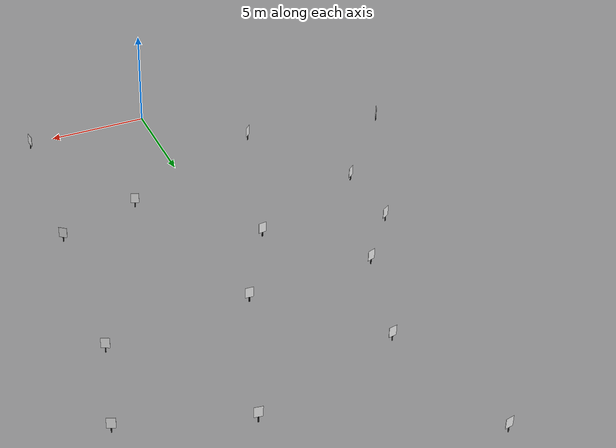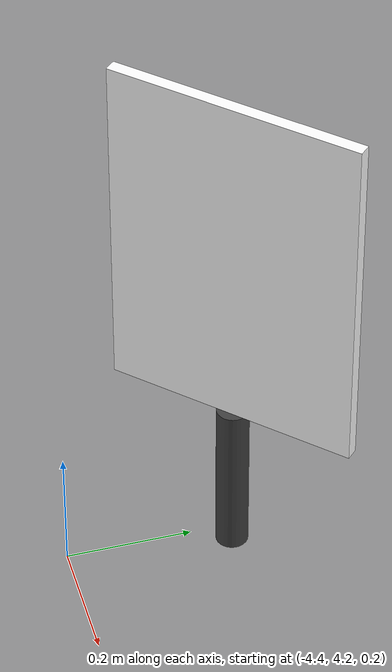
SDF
<sdf version="1.10">
 <world name="empty">
  <physics name="1ms" type="ignored">
   <max_step_size>0.001</max_step_size>
   <real_time_factor>1</real_time_factor>
   <dart>
    <collision_detector>bullet</collision_detector>
    <solver><solver_type>dantzig</solver_type></solver>
   </dart>
   <real_time_update_rate>1000</real_time_update_rate>
  </physics>
  <plugin name="gz::sim::systems::Physics" filename="gz-sim-physics-system"/>
  <plugin name="gz::sim::systems::UserCommands" filename="gz-sim-user-commands-system"/>
  <plugin name="gz::sim::systems::SceneBroadcaster" filename="gz-sim-scene-broadcaster-system"/>
  <plugin name="gz::sim::systems::Contact" filename="gz-sim-contact-system"/>
  <plugin name="gz::sim::systems::Imu" filename="gz-sim-imu-system"/>
  <plugin name="gz::sim::systems::Sensors" filename="gz-sim-sensors-system">
   <render_engine>ogre2</render_engine>
  </plugin>
  <gravity>0 0 -9.8000000000000007</gravity>
  <magnetic_field>5.5644999999999998e-06 2.2875799999999999e-05 -4.2388400000000002e-05</magnetic_field>
  <atmosphere type="adiabatic"/>
  <scene>
   <ambient>0.400000006 0.400000006 0.400000006 1</ambient>
   <background>0.699999988 0.699999988 0.699999988 1</background>
   <grid>false</grid>
   <origin_visual>false</origin_visual>
   <shadows>true</shadows>
  </scene>
  <frame name="S1"/>
  <frame name="S2"><pose>0.000 26.427 0.138 0 0 0</pose></frame>
  <frame name="S3"><pose>10.709 6.918 0.067 0 0 0</pose></frame>
  <frame name="S4"><pose>11.210 17.881 0.100 0 0 0</pose></frame>
  <frame name="S5"><pose>13.223 25.658 -0.035 0 0 0</pose></frame>
  <frame name="S6"><pose>-9.428 15.824 -0.302 0 0 0</pose></frame>
  <frame name="S7"><pose>-8.970 22.831 -0.180 0 0 0</pose></frame>
  <frame name="S8"><pose>-15.676 4.991 -0.280 0 0 0</pose></frame>
  <frame name="S9"><pose>7.160 -4.762 -0.095 0 0 0</pose></frame>
  <model name="landmark_L1">
   <static>true</static>
   <pose>3.183 8.012 0.414 0 0 -3.5198</pose>
   <link name="link">
    <collision name="post_collision">
     <pose>0 0 0.125 0 0 0</pose>
     <geometry><cylinder><radius>0.025</radius><length>0.250</length></cylinder></geometry>
    </collision>
    <visual name="post_visual">
     <pose>0 0 0.125 0 0 0</pose>
     <geometry><cylinder><radius>0.025</radius><length>0.250</length></cylinder></geometry>
     <material><ambient>0.25 0.25 0.25 1</ambient><diffuse>0.25 0.25 0.25 1</diffuse></material>
    </visual>
    <collision name="board_collision">
     <pose>0 0 0.525 0 0 0</pose>
     <geometry><box><size>0.400 0.02 0.550</size></box></geometry>
    </collision>
    <visual name="board_visual">
     <pose>0 0 0.525 0 0 0</pose>
     <geometry><box><size>0.400 0.02 0.550</size></box></geometry>
     <material>
      <ambient>1 1 1 1</ambient>
      <diffuse>1 1 1 1</diffuse>
      <pbr>
       <metal>
        <albedo_map>model://marsyard2026/landmark_L1.png</albedo_map>
        <roughness>0.9</roughness>
        <metalness>0</metalness>
       </metal>
      </pbr>
     </material>
    </visual>
   </link>
  </model>
  <model name="landmark_L2">
   <static>true</static>
   <pose>7.269 9.482 0.533 0 0 -3.7956</pose>
   <link name="link">
    <collision name="post_collision">
     <pose>0 0 0.125 0 0 0</pose>
     <geometry><cylinder><radius>0.025</radius><length>0.250</length></cylinder></geometry>
    </collision>
    <visual name="post_visual">
     <pose>0 0 0.125 0 0 0</pose>
     <geometry><cylinder><radius>0.025</radius><length>0.250</length></cylinder></geometry>
     <material><ambient>0.25 0.25 0.25 1</ambient><diffuse>0.25 0.25 0.25 1</diffuse></material>
    </visual>
    <collision name="board_collision">
     <pose>0 0 0.525 0 0 0</pose>
     <geometry><box><size>0.400 0.02 0.550</size></box></geometry>
    </collision>
    <visual name="board_visual">
     <pose>0 0 0.525 0 0 0</pose>
     <geometry><box><size>0.400 0.02 0.550</size></box></geometry>
     <material>
      <ambient>1 1 1 1</ambient>
      <diffuse>1 1 1 1</diffuse>
      <pbr>
       <metal>
        <albedo_map>model://marsyard2026/landmark_L2.png</albedo_map>
        <roughness>0.9</roughness>
        <metalness>0</metalness>
       </metal>
      </pbr>
     </material>
    </visual>
   </link>
  </model>
  <model name="landmark_L3">
   <static>true</static>
   <pose>7.878 17.583 0.453 0 0 -3.5628</pose>
   <link name="link">
    <collision name="post_collision">
     <pose>0 0 0.125 0 0 0</pose>
     <geometry><cylinder><radius>0.025</radius><length>0.250</length></cylinder></geometry>
    </collision>
    <visual name="post_visual">
     <pose>0 0 0.125 0 0 0</pose>
     <geometry><cylinder><radius>0.025</radius><length>0.250</length></cylinder></geometry>
     <material><ambient>0.25 0.25 0.25 1</ambient><diffuse>0.25 0.25 0.25 1</diffuse></material>
    </visual>
    <collision name="board_collision">
     <pose>0 0 0.525 0 0 0</pose>
     <geometry><box><size>0.400 0.02 0.550</size></box></geometry>
    </collision>
    <visual name="board_visual">
     <pose>0 0 0.525 0 0 0</pose>
     <geometry><box><size>0.400 0.02 0.550</size></box></geometry>
     <material>
      <ambient>1 1 1 1</ambient>
      <diffuse>1 1 1 1</diffuse>
      <pbr>
       <metal>
        <albedo_map>model://marsyard2026/landmark_L3.png</albedo_map>
        <roughness>0.9</roughness>
        <metalness>0</metalness>
       </metal>
      </pbr>
     </material>
    </visual>
   </link>
  </model>
  <model name="landmark_L4">
   <static>true</static>
   <pose>9.225 22.389 0.601 0 0 -3.5324</pose>
   <link name="link">
    <collision name="post_collision">
     <pose>0 0 0.125 0 0 0</pose>
     <geometry><cylinder><radius>0.025</radius><length>0.250</length></cylinder></geometry>
    </collision>
    <visual name="post_visual">
     <pose>0 0 0.125 0 0 0</pose>
     <geometry><cylinder><radius>0.025</radius><length>0.250</length></cylinder></geometry>
     <material><ambient>0.25 0.25 0.25 1</ambient><diffuse>0.25 0.25 0.25 1</diffuse></material>
    </visual>
    <collision name="board_collision">
     <pose>0 0 0.525 0 0 0</pose>
     <geometry><box><size>0.400 0.02 0.550</size></box></geometry>
    </collision>
    <visual name="board_visual">
     <pose>0 0 0.525 0 0 0</pose>
     <geometry><box><size>0.400 0.02 0.550</size></box></geometry>
     <material>
      <ambient>1 1 1 1</ambient>
      <diffuse>1 1 1 1</diffuse>
      <pbr>
       <metal>
        <albedo_map>model://marsyard2026/landmark_L4.png</albedo_map>
        <roughness>0.9</roughness>
        <metalness>0</metalness>
       </metal>
      </pbr>
     </material>
    </visual>
   </link>
  </model>
  <model name="landmark_L5">
   <static>true</static>
   <pose>3.518 23.990 0.469 0 0 -3.2872</pose>
   <link name="link">
    <collision name="post_collision">
     <pose>0 0 0.139 0 0 0</pose>
     <geometry><cylinder><radius>0.025</radius><length>0.279</length></cylinder></geometry>
    </collision>
    <visual name="post_visual">
     <pose>0 0 0.139 0 0 0</pose>
     <geometry><cylinder><radius>0.025</radius><length>0.279</length></cylinder></geometry>
     <material><ambient>0.25 0.25 0.25 1</ambient><diffuse>0.25 0.25 0.25 1</diffuse></material>
    </visual>
    <collision name="board_collision">
     <pose>0 0 0.554 0 0 0</pose>
     <geometry><box><size>0.400 0.02 0.550</size></box></geometry>
    </collision>
    <visual name="board_visual">
     <pose>0 0 0.554 0 0 0</pose>
     <geometry><box><size>0.400 0.02 0.550</size></box></geometry>
     <material>
      <ambient>1 1 1 1</ambient>
      <diffuse>1 1 1 1</diffuse>
      <pbr>
       <metal>
        <albedo_map>model://marsyard2026/landmark_L5.png</albedo_map>
        <roughness>0.9</roughness>
        <metalness>0</metalness>
       </metal>
      </pbr>
     </material>
    </visual>
   </link>
  </model>
  <model name="landmark_L6">
   <static>true</static>
   <pose>0.882 16.870 0.465 0 0 -3.1938</pose>
   <link name="link">
    <collision name="post_collision">
     <pose>0 0 0.125 0 0 0</pose>
     <geometry><cylinder><radius>0.025</radius><length>0.250</length></cylinder></geometry>
    </collision>
    <visual name="post_visual">
     <pose>0 0 0.125 0 0 0</pose>
     <geometry><cylinder><radius>0.025</radius><length>0.250</length></cylinder></geometry>
     <material><ambient>0.25 0.25 0.25 1</ambient><diffuse>0.25 0.25 0.25 1</diffuse></material>
    </visual>
    <collision name="board_collision">
     <pose>0 0 0.525 0 0 0</pose>
     <geometry><box><size>0.400 0.02 0.550</size></box></geometry>
    </collision>
    <visual name="board_visual">
     <pose>0 0 0.525 0 0 0</pose>
     <geometry><box><size>0.400 0.02 0.550</size></box></geometry>
     <material>
      <ambient>1 1 1 1</ambient>
      <diffuse>1 1 1 1</diffuse>
      <pbr>
       <metal>
        <albedo_map>model://marsyard2026/landmark_L6.png</albedo_map>
        <roughness>0.9</roughness>
        <metalness>0</metalness>
       </metal>
      </pbr>
     </material>
    </visual>
   </link>
  </model>
  <model name="landmark_L7">
   <static>true</static>
   <pose>-3.944 21.415 0.193 0 0 -2.9595</pose>
   <link name="link">
    <collision name="post_collision">
     <pose>0 0 0.125 0 0 0</pose>
     <geometry><cylinder><radius>0.025</radius><length>0.250</length></cylinder></geometry>
    </collision>
    <visual name="post_visual">
     <pose>0 0 0.125 0 0 0</pose>
     <geometry><cylinder><radius>0.025</radius><length>0.250</length></cylinder></geometry>
     <material><ambient>0.25 0.25 0.25 1</ambient><diffuse>0.25 0.25 0.25 1</diffuse></material>
    </visual>
    <collision name="board_collision">
     <pose>0 0 0.525 0 0 0</pose>
     <geometry><box><size>0.400 0.02 0.550</size></box></geometry>
    </collision>
    <visual name="board_visual">
     <pose>0 0 0.525 0 0 0</pose>
     <geometry><box><size>0.400 0.02 0.550</size></box></geometry>
     <material>
      <ambient>1 1 1 1</ambient>
      <diffuse>1 1 1 1</diffuse>
      <pbr>
       <metal>
        <albedo_map>model://marsyard2026/landmark_L7.png</albedo_map>
        <roughness>0.9</roughness>
        <metalness>0</metalness>
       </metal>
      </pbr>
     </material>
    </visual>
   </link>
  </model>
  <model name="landmark_L8">
   <static>true</static>
   <pose>-5.491 16.334 0.278 0 0 -2.8173</pose>
   <link name="link">
    <collision name="post_collision">
     <pose>0 0 0.125 0 0 0</pose>
     <geometry><cylinder><radius>0.025</radius><length>0.250</length></cylinder></geometry>
    </collision>
    <visual name="post_visual">
     <pose>0 0 0.125 0 0 0</pose>
     <geometry><cylinder><radius>0.025</radius><length>0.250</length></cylinder></geometry>
     <material><ambient>0.25 0.25 0.25 1</ambient><diffuse>0.25 0.25 0.25 1</diffuse></material>
    </visual>
    <collision name="board_collision">
     <pose>0 0 0.525 0 0 0</pose>
     <geometry><box><size>0.400 0.02 0.550</size></box></geometry>
    </collision>
    <visual name="board_visual">
     <pose>0 0 0.525 0 0 0</pose>
     <geometry><box><size>0.400 0.02 0.550</size></box></geometry>
     <material>
      <ambient>1 1 1 1</ambient>
      <diffuse>1 1 1 1</diffuse>
      <pbr>
       <metal>
        <albedo_map>model://marsyard2026/landmark_L8.png</albedo_map>
        <roughness>0.9</roughness>
        <metalness>0</metalness>
       </metal>
      </pbr>
     </material>
    </visual>
   </link>
  </model>
  <model name="landmark_L9">
   <static>true</static>
   <pose>-7.695 13.528 0.214 0 0 -2.6244</pose>
   <link name="link">
    <collision name="post_collision">
     <pose>0 0 0.125 0 0 0</pose>
     <geometry><cylinder><radius>0.025</radius><length>0.250</length></cylinder></geometry>
    </collision>
    <visual name="post_visual">
     <pose>0 0 0.125 0 0 0</pose>
     <geometry><cylinder><radius>0.025</radius><length>0.250</length></cylinder></geometry>
     <material><ambient>0.25 0.25 0.25 1</ambient><diffuse>0.25 0.25 0.25 1</diffuse></material>
    </visual>
    <collision name="board_collision">
     <pose>0 0 0.525 0 0 0</pose>
     <geometry><box><size>0.400 0.02 0.550</size></box></geometry>
    </collision>
    <visual name="board_visual">
     <pose>0 0 0.525 0 0 0</pose>
     <geometry><box><size>0.400 0.02 0.550</size></box></geometry>
     <material>
      <ambient>1 1 1 1</ambient>
      <diffuse>1 1 1 1</diffuse>
      <pbr>
       <metal>
        <albedo_map>model://marsyard2026/landmark_L9.png</albedo_map>
        <roughness>0.9</roughness>
        <metalness>0</metalness>
       </metal>
      </pbr>
     </material>
    </visual>
   </link>
  </model>
  <model name="landmark_L10">
   <static>true</static>
   <pose>-1.610 12.602 0.403 0 0 -3.0145</pose>
   <link name="link">
    <collision name="post_collision">
     <pose>0 0 0.125 0 0 0</pose>
     <geometry><cylinder><radius>0.025</radius><length>0.250</length></cylinder></geometry>
    </collision>
    <visual name="post_visual">
     <pose>0 0 0.125 0 0 0</pose>
     <geometry><cylinder><radius>0.025</radius><length>0.250</length></cylinder></geometry>
     <material><ambient>0.25 0.25 0.25 1</ambient><diffuse>0.25 0.25 0.25 1</diffuse></material>
    </visual>
    <collision name="board_collision">
     <pose>0 0 0.525 0 0 0</pose>
     <geometry><box><size>0.400 0.02 0.550</size></box></geometry>
    </collision>
    <visual name="board_visual">
     <pose>0 0 0.525 0 0 0</pose>
     <geometry><box><size>0.400 0.02 0.550</size></box></geometry>
     <material>
      <ambient>1 1 1 1</ambient>
      <diffuse>1 1 1 1</diffuse>
      <pbr>
       <metal>
        <albedo_map>model://marsyard2026/landmark_L10.png</albedo_map>
        <roughness>0.9</roughness>
        <metalness>0</metalness>
       </metal>
      </pbr>
     </material>
    </visual>
   </link>
  </model>
  <model name="landmark_L11">
   <static>true</static>
   <pose>-7.715 9.721 0.154 0 0 -2.4707</pose>
   <link name="link">
    <collision name="post_collision">
     <pose>0 0 0.125 0 0 0</pose>
     <geometry><cylinder><radius>0.025</radius><length>0.250</length></cylinder></geometry>
    </collision>
    <visual name="post_visual">
     <pose>0 0 0.125 0 0 0</pose>
     <geometry><cylinder><radius>0.025</radius><length>0.250</length></cylinder></geometry>
     <material><ambient>0.25 0.25 0.25 1</ambient><diffuse>0.25 0.25 0.25 1</diffuse></material>
    </visual>
    <collision name="board_collision">
     <pose>0 0 0.525 0 0 0</pose>
     <geometry><box><size>0.400 0.02 0.550</size></box></geometry>
    </collision>
    <visual name="board_visual">
     <pose>0 0 0.525 0 0 0</pose>
     <geometry><box><size>0.400 0.02 0.550</size></box></geometry>
     <material>
      <ambient>1 1 1 1</ambient>
      <diffuse>1 1 1 1</diffuse>
      <pbr>
       <metal>
        <albedo_map>model://marsyard2026/landmark_L11.png</albedo_map>
        <roughness>0.9</roughness>
        <metalness>0</metalness>
       </metal>
      </pbr>
     </material>
    </visual>
   </link>
  </model>
  <model name="landmark_L12">
   <static>true</static>
   <pose>-4.311 4.442 0.262 0 0 -2.3712</pose>
   <link name="link">
    <collision name="post_collision">
     <pose>0 0 0.131 0 0 0</pose>
     <geometry><cylinder><radius>0.025</radius><length>0.262</length></cylinder></geometry>
    </collision>
    <visual name="post_visual">
     <pose>0 0 0.131 0 0 0</pose>
     <geometry><cylinder><radius>0.025</radius><length>0.262</length></cylinder></geometry>
     <material><ambient>0.25 0.25 0.25 1</ambient><diffuse>0.25 0.25 0.25 1</diffuse></material>
    </visual>
    <collision name="board_collision">
     <pose>0 0 0.537 0 0 0</pose>
     <geometry><box><size>0.400 0.02 0.550</size></box></geometry>
    </collision>
    <visual name="board_visual">
     <pose>0 0 0.537 0 0 0</pose>
     <geometry><box><size>0.400 0.02 0.550</size></box></geometry>
     <material>
      <ambient>1 1 1 1</ambient>
      <diffuse>1 1 1 1</diffuse>
      <pbr>
       <metal>
        <albedo_map>model://marsyard2026/landmark_L12.png</albedo_map>
        <roughness>0.9</roughness>
        <metalness>0</metalness>
       </metal>
      </pbr>
     </material>
    </visual>
   </link>
  </model>
  <model name="landmark_L13">
   <static>true</static>
   <pose>-5.720 28.118 0.112 0 0 -2.9409</pose>
   <link name="link">
    <collision name="post_collision">
     <pose>0 0 0.133 0 0 0</pose>
     <geometry><cylinder><radius>0.025</radius><length>0.266</length></cylinder></geometry>
    </collision>
    <visual name="post_visual">
     <pose>0 0 0.133 0 0 0</pose>
     <geometry><cylinder><radius>0.025</radius><length>0.266</length></cylinder></geometry>
     <material><ambient>0.25 0.25 0.25 1</ambient><diffuse>0.25 0.25 0.25 1</diffuse></material>
    </visual>
    <collision name="board_collision">
     <pose>0 0 0.541 0 0 0</pose>
     <geometry><box><size>0.400 0.02 0.550</size></box></geometry>
    </collision>
    <visual name="board_visual">
     <pose>0 0 0.541 0 0 0</pose>
     <geometry><box><size>0.400 0.02 0.550</size></box></geometry>
     <material>
      <ambient>1 1 1 1</ambient>
      <diffuse>1 1 1 1</diffuse>
      <pbr>
       <metal>
        <albedo_map>model://marsyard2026/landmark_L13.png</albedo_map>
        <roughness>0.9</roughness>
        <metalness>0</metalness>
       </metal>
      </pbr>
     </material>
    </visual>
   </link>
  </model>
  <model name="landmark_L14">
   <static>true</static>
   <pose>-11.438 5.230 0.151 0 0 -1.9997</pose>
   <link name="link">
    <collision name="post_collision">
     <pose>0 0 0.136 0 0 0</pose>
     <geometry><cylinder><radius>0.025</radius><length>0.271</length></cylinder></geometry>
    </collision>
    <visual name="post_visual">
     <pose>0 0 0.136 0 0 0</pose>
     <geometry><cylinder><radius>0.025</radius><length>0.271</length></cylinder></geometry>
     <material><ambient>0.25 0.25 0.25 1</ambient><diffuse>0.25 0.25 0.25 1</diffuse></material>
    </visual>
    <collision name="board_collision">
     <pose>0 0 0.546 0 0 0</pose>
     <geometry><box><size>0.400 0.02 0.550</size></box></geometry>
    </collision>
    <visual name="board_visual">
     <pose>0 0 0.546 0 0 0</pose>
     <geometry><box><size>0.400 0.02 0.550</size></box></geometry>
     <material>
      <ambient>1 1 1 1</ambient>
      <diffuse>1 1 1 1</diffuse>
      <pbr>
       <metal>
        <albedo_map>model://marsyard2026/landmark_L14.png</albedo_map>
        <roughness>0.9</roughness>
        <metalness>0</metalness>
       </metal>
      </pbr>
     </material>
    </visual>
   </link>
  </model>
  <model name="landmark_L15">
   <static>true</static>
   <pose>6.483 1.102 0.434 0 0 -4.5440</pose>
   <link name="link">
    <collision name="post_collision">
     <pose>0 0 0.125 0 0 0</pose>
     <geometry><cylinder><radius>0.025</radius><length>0.250</length></cylinder></geometry>
    </collision>
    <visual name="post_visual">
     <pose>0 0 0.125 0 0 0</pose>
     <geometry><cylinder><radius>0.025</radius><length>0.250</length></cylinder></geometry>
     <material><ambient>0.25 0.25 0.25 1</ambient><diffuse>0.25 0.25 0.25 1</diffuse></material>
    </visual>
    <collision name="board_collision">
     <pose>0 0 0.525 0 0 0</pose>
     <geometry><box><size>0.400 0.02 0.550</size></box></geometry>
    </collision>
    <visual name="board_visual">
     <pose>0 0 0.525 0 0 0</pose>
     <geometry><box><size>0.400 0.02 0.550</size></box></geometry>
     <material>
      <ambient>1 1 1 1</ambient>
      <diffuse>1 1 1 1</diffuse>
      <pbr>
       <metal>
        <albedo_map>model://marsyard2026/landmark_L15.png</albedo_map>
        <roughness>0.9</roughness>
        <metalness>0</metalness>
       </metal>
      </pbr>
     </material>
    </visual>
   </link>
  </model>
  <frame name="W1"><pose>1.951 9.759 -0.053 0 0 0</pose></frame>
  <frame name="W2"><pose>4.170 19.499 0.105 0 0 0</pose></frame>
  <frame name="W3"><pose>7.013 23.149 0.205 0 0 0</pose></frame>
  <frame name="W4"><pose>-1.701 18.665 -0.156 0 0 0</pose></frame>
  <frame name="W5"><pose>-5.339 19.034 -0.259 0 0 0</pose></frame>
  <frame name="W6"><pose>-7.675 8.197 -0.179 0 0 0</pose></frame>
  <frame name="W7"><pose>-2.108 7.682 -0.163 0 0 0</pose></frame>
  <frame name="W8"><pose>5.939 6.790 -0.065 0 0 0</pose></frame>
  <frame name="W9"><pose>5.088 13.092 0.011 0 0 0</pose></frame>
  <frame name="P1"><pose>-5.997 25.901 -0.160 0 0 0</pose></frame>
  <light name="sun" type="directional">
   <pose>0 0 30 0 0 0</pose>
   <intensity>1</intensity>
   <direction>-0.42 0.5 -0.757</direction>
   <diffuse>0.95 0.92 0.88 1</diffuse>
   <specular>0.2 0.2 0.2 1</specular>
   <attenuation>
    <range>1000</range>
    <linear>0.01</linear>
    <constant>0.90000000000000002</constant>
    <quadratic>0.001</quadratic>
   </attenuation>
   <spot><inner_angle>0</inner_angle><outer_angle>0</outer_angle><falloff>0</falloff></spot>
  </light>
 </world>
</sdf>
